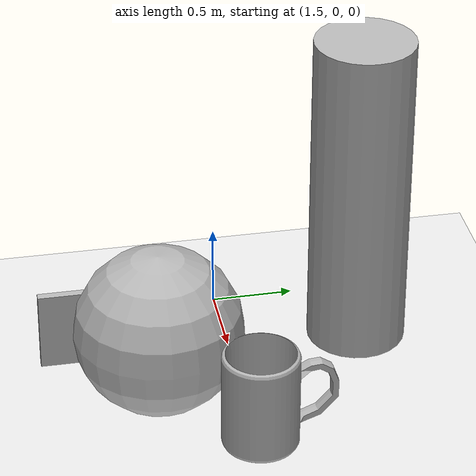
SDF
<?xml version="1.0"?>

<sdf version="1.5">
  <world name="scan_world">

  <!-- cfm is 1e-5 for single precision -->
  <!-- erp is typically .1-.8 -->
  <!-- here's the global contact cfm/erp -->
  <physics type="ode">
    <gravity>0 0 -9.8</gravity>
    <ode>
      <solver>
        <type>quick</type>
        <iters>3</iters>
        <sor>1.3</sor>
      </solver>
      <constraints>
        <cfm>0.0000000001</cfm>
        <erp>0.2</erp>
        <contact_max_correcting_vel>100.0</contact_max_correcting_vel>
        <contact_surface_layer>0.001</contact_surface_layer>
      </constraints>
    </ode>
  </physics>

  <gui>
  </gui>

  <scene>
    <ambient>1.0 1.0 1.0 1.0</ambient>
    <grid>false</grid>
  </scene>

  <model name="gplane">
    <pose>0 0 0 0 0 0</pose>
    <static>true</static>

    <link name="plane">
      <pose>0 0 -0.05 0 0 0</pose>
      <collision name="plane_collision">
        <surface>
          <contact>
            <ode>
              <kp>1000000.0</kp>
              <kd>1.0</kd>
            </ode>
          </contact>
        </surface>
        <geometry>
          <box>
            <size>51.3 51.3 0.1</size>
          </box>
        </geometry>
      </collision>
      <visual name="plane_visual">
        <geometry>
          <box>
            <size>51.3 51.3 0.1</size>
          </box>
        </geometry>
        <!-- map3.png -->
        <material>
          <script>
            <uri>file://media/materials/scripts/gazebo.material</uri>
            <name>Gazebo/White</name>
          </script>
        </material>
      </visual>
    </link>
  </model>

  <!-- The small cuboidal "test sphere" -->
  <model name="sphere1_model">
    <pose>   2.5   -0.5    0.5064   0.0    0.0    0.0 </pose>
    <static>true</static>
    <link name="sphere1_body">
      <collision name="sphere1_geom_collision">
        <laser_retro>3000.0</laser_retro>
        <geometry>
          <sphere>
            <radius> 0.5</radius>
          </sphere>
        </geometry>
      </collision>
      <visual name="sphere1_geom_visual">
        <geometry>
          <sphere>
            <radius> 0.5</radius>
          </sphere>
        </geometry>
        <material>
          <script>
            <uri>file://media/materials/scripts/gazebo.material</uri>
            <name>Gazebo/PioneerBody</name>
          </script>
        </material>
      </visual>
    </link>
  </model>

  <!-- The small cuboidal "test box" -->
  <model name="box1_model">
    <pose>   2.0   -1.0    0.24   0.0    0.0    0.0</pose>
    <static>true</static>
    <link name="box1_body">
      <collision name="box1_geom_collision">
        <laser_retro>500.0</laser_retro>
        <geometry>
          <box>
            <size>0.05 0.30 0.5</size>
          </box>
        </geometry>
      </collision>
      <visual name="box1_geom_visual">
        <geometry>
          <box>
            <size> 0.05 0.30 0.5</size>
          </box>
        </geometry>
        <material>
          <script>
            <uri>file://media/materials/scripts/gazebo.material</uri>
            <name>Gazebo/PioneerBody</name>
          </script>
        </material>
      </visual>
    </link>
  </model>

  <!-- The small cylindrical "test cylinder" -->
  <model name="cylinder1_model">
    <pose>   2.0    0.8    1.0   0.0    0.0    0.0</pose>
    <static>true</static>
    <link name="cylinder1_body">
      <collision name="cylinder1_geom_collision">
        <laser_retro>1000.0</laser_retro>
        <geometry>
          <cylinder>
            <radius>0.3</radius>
            <length>2.0</length>
          </cylinder>
        </geometry>
      </collision>
      <visual name="cylinder1_geom_visual">
        <geometry>
          <cylinder>
            <radius>0.3</radius>
            <length>2.0</length>
          </cylinder>
        </geometry>
        <material>
          <script>
            <uri>file://media/materials/scripts/gazebo.material</uri>
            <name>Gazebo/PioneerBody</name>
          </script>
        </material>
      </visual>
    </link>
  </model>

  <!-- The trimesh cup -->
  <model name="cup1_model">
    <pose>    3.0    0.0     0.009  1.5708   0.0    1.5708</pose>
    <static>true</static>
    <link name="cup1_body">
      <collision name="cup1_geom_collision">
        <laser_retro>2000.0</laser_retro>
        <geometry>
          <mesh>
            <scale> 0.3 0.3 0.3</scale>
            <uri>model://Media/models/cup.stl</uri>
          </mesh>
        </geometry>
      </collision>
      <visual name="cup1_geom_visual">
        <geometry>
          <mesh>
            <scale> 0.3 0.3 0.3</scale>
            <uri>model://Media/models/cup.stl</uri>
          </mesh>
        </geometry>
        <material>
          <script>
            <uri>file://media/materials/scripts/gazebo.material</uri>
            <name>Gazebo/PioneerBody</name>
          </script>
        </material>
      </visual>
    </link>
  </model>

  <!-- White Directional light -->

  </world>
</sdf>
